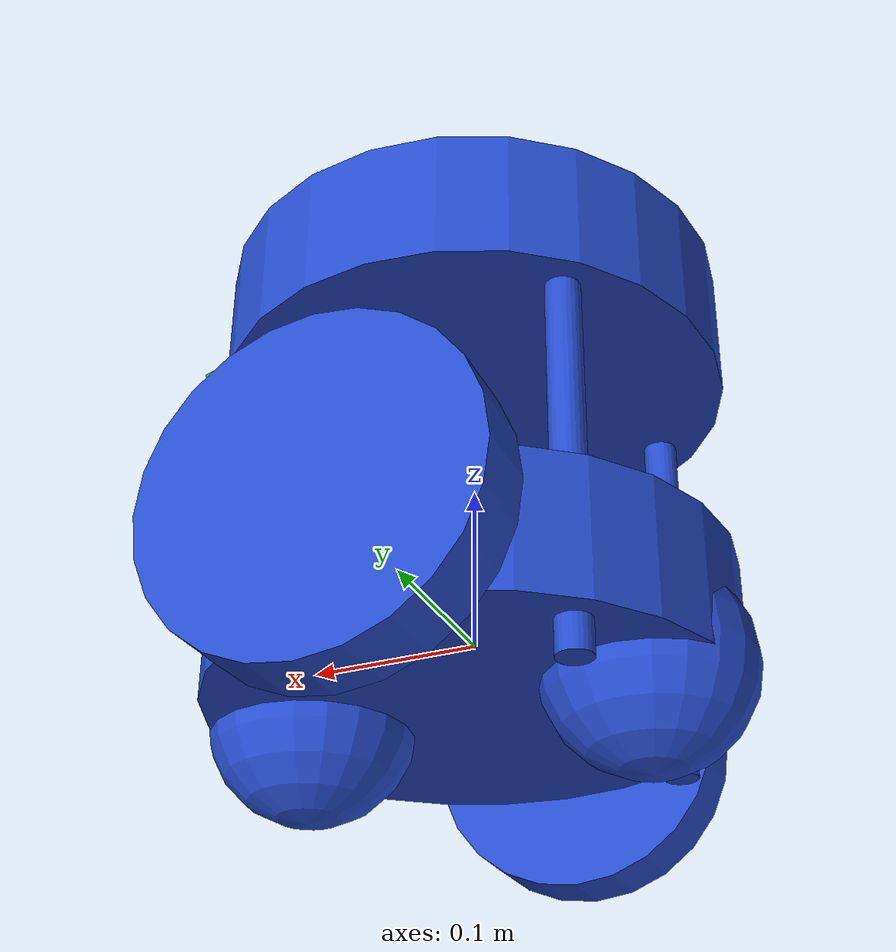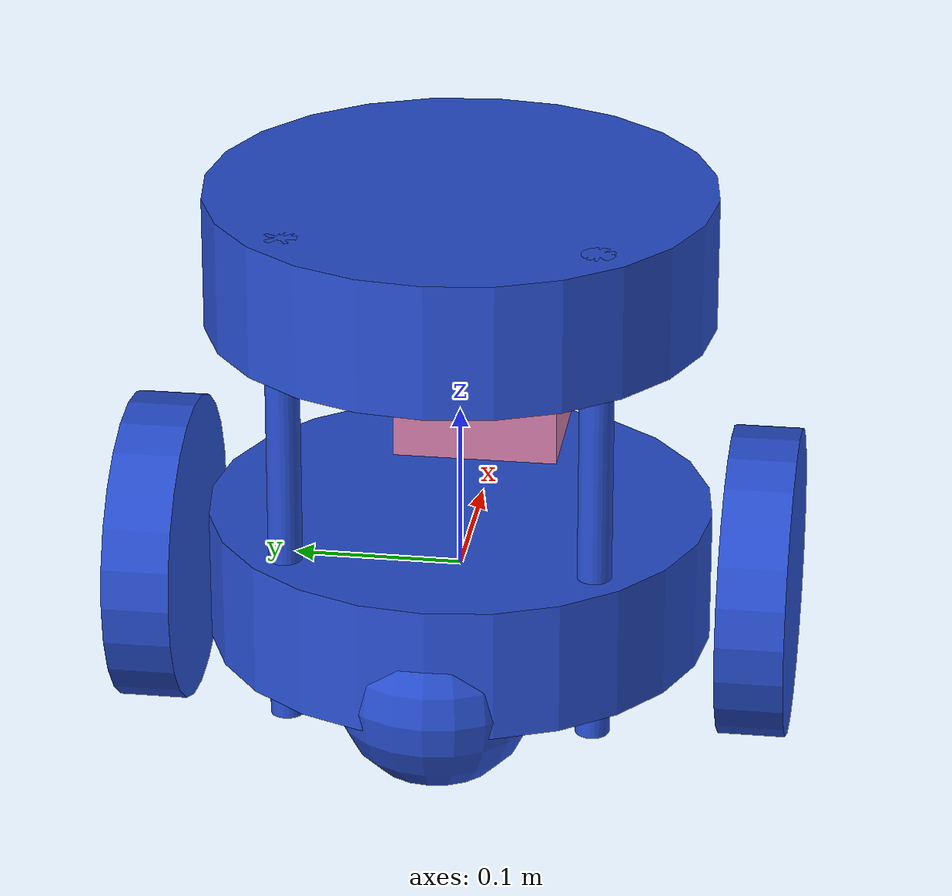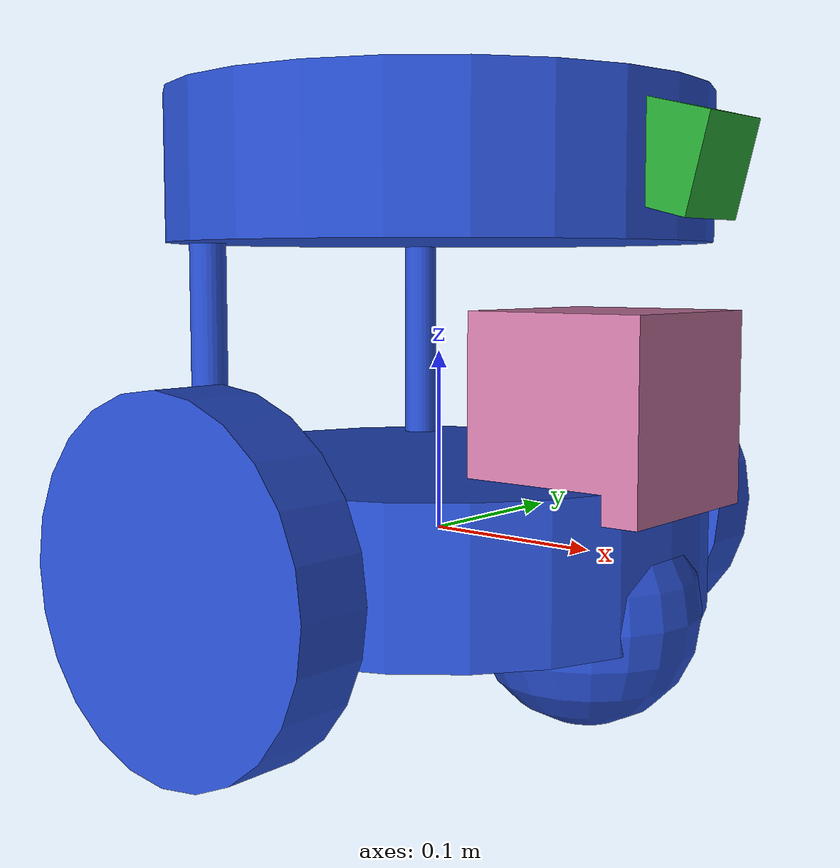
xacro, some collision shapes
<?xml version="1.0"?>
<robot name="my_robot" xmlns:xacro="http://www.ros.org/wiki/xacro">
	<include filename="$(find my_robot)/urdf/my_robot.gazebo" />
	<link name="robot_footprint">
	</link>
	<joint name="robot_footprint_joint" type="fixed">
		<origin xyz="0 0 0" rpy="0 0 0" />
		<parent link="robot_footprint" />
		<child link="chassis" />
	</joint>
	<joint name="camera_joint" type="fixed">
		<origin xyz="0.15 0.0 0.2" rpy="0 0.25 0" />
		<axis xyz="0 1 0" rpy="0 0 0" />
		<parent link="chassis" />
		<child link="camera" />
	</joint>
	<joint name="hokuyo_joint" type="fixed">
		<origin xyz="0.11 0.0 0.075" rpy="0 0 0" />
		<axis xyz="0 1 0" rpy="0 0 0" />
		<parent link="chassis" />
		<child link="hokuyo" />
	</joint>
	<joint type="continuous" name="left_wheel_hinge">
		<origin xyz="0.0 0.18 0" rpy="0 0 0" />
		<child link="left_wheel" />
		<parent link="chassis" />
		<axis xyz="0 1 0" rpy="0 0 0" />
		<limit effort="10000" velocity="1000" />
		<dynamics damping="1.0" friction="1.0" />
	</joint>
	<joint type="continuous" name="right_wheel_hinge">
		<origin xyz="0.0 -0.18 0" rpy="0 0 0" />
		<child link="right_wheel" />
		<parent link="chassis" />
		<axis xyz="0 1 0" rpy="0 0 0" />
		<limit effort="10000" velocity="1000" />
		<dynamics damping="1.0" friction="1.0" />
	</joint>

  <joint name="camera_optical_joint" type="fixed">
    <origin xyz="0 0 0" rpy="-1.5707 0 -1.5707"/>
    <parent link="camera"/>
    <child link="camera_link_optical"/>
  </joint>

  <link name="camera_link_optical">
  </link>

	<link name="chassis">
		<pose>
			0 0 0.1 0 0 0
		</pose>
		<inertial>
			<mass value="15.0" />
			<origin xyz="0.0 0 0" rpy=" 0 0 0" />
			<inertia ixx="0.1" ixy="0" ixz="0" iyy="0.1" iyz="0" izz="0.1" />
		</inertial>
		<collision name="bottom_chassis_collision">
			<origin xyz="0 0 0" rpy=" 0 0 0" />
			<geometry>
				<cylinder radius="0.16" length="0.08" />
			</geometry>
		</collision>
		<visual name="bottom_chassis_visual">
			<origin xyz="0 0 0" rpy=" 0 0 0" />
			<geometry>
				<cylinder radius="0.15" length="0.08" />
			</geometry>
		</visual>
		<collision name="top_chassis_collision">
			<origin xyz="0 0 0.2" rpy=" 0 0 0" />
			<geometry>
				<cylinder radius="0.16" length="0.08" />
			</geometry>
		</collision>
		<visual name="top_chassis_visual">
			<origin xyz="0 0 0.2" rpy=" 0 0 0" />
			<geometry>
				<cylinder radius="0.15" length="0.08" />
			</geometry>
		</visual>
		<collision name="front_caster_collision">
			<origin xyz="0.10 0 -0.03" rpy=" 0 0 0" />
			<geometry>
				<sphere radius="0.06" />
			</geometry>
		</collision>
		<visual name="front_caster_visual">
			<origin xyz="0.10 0 -0.03" rpy=" 0 0 0" />
			<geometry>
				<sphere radius="0.06" />
			</geometry>
		</visual>
		<collision name="back_caster_collision">
			<origin xyz="-0.1 0 -0.03" rpy=" 0 0 0" />
			<geometry>
				<sphere radius="0.06" />
			</geometry>
		</collision>
		<visual name="back_caster_visual">
			<origin xyz="-0.1 0 -0.03" rpy=" 0 0 0" />
			<geometry>
				<sphere radius="0.06" />
			</geometry>
		</visual>
		<collision name="back_right_pin_collision">
			<origin xyz="-0.09 -0.09 0.09" rpy=" 0 0 0" />
			<geometry>
				<cylinder radius="0.01" length="0.3" />
			</geometry>
		</collision>
		<visual name="back_right_pin_visual">
			<origin xyz="-0.09 -0.09 0.09" rpy=" 0 0 0" />
			<geometry>
				<cylinder radius="0.01" length="0.3" />
			</geometry>
		</visual>
		<collision name="back_left_pin_collision">
			<origin xyz="-0.09 0.09 0.09" rpy=" 0 0 0" />
			<geometry>
				<cylinder radius="0.01" length="0.3" />
			</geometry>
		</collision>
		<visual name="back_left_pin_visual">
			<origin xyz="-0.09 0.09 0.09" rpy=" 0 0 0" />
			<geometry>
				<cylinder radius="0.01" length="0.3" />
			</geometry>
		</visual>
	</link>
	<gazebo reference="chassis">
		<material>
			Gazebo/Blue
		</material>
	</gazebo>
	<link name="left_wheel">
		<pose>
			0 0 0.1 0 0 0
		</pose>
		<inertial>
			<mass value="5.0" />
			<origin xyz="0.0 0 0" rpy=" 0 1.5707 1.5707" />
			<inertia ixx="0.1" ixy="0" ixz="0" iyy="0.1" iyz="0" izz="0.1" />
		</inertial>
		<collision name="collision">
			<origin xyz="0 0 0" rpy=" 0 1.5707 1.5707" />
			<geometry>
				<cylinder radius="0.092" length="0.04" />
			</geometry>
		</collision>
		<visual name="left_wheel_visual">
			<origin xyz="0 0 0" rpy=" 0 1.5707 1.5707" />
			<geometry>
				<cylinder radius="0.092" length="0.04" />
			</geometry>
		</visual>
	</link>
	<gazebo reference="left_wheel">
		<material>
			Gazebo/Blue
		</material>
	</gazebo>
	<link name="right_wheel">
		<pose>
			0 0 0.1 0 0 0
		</pose>
		<inertial>
			<mass value="5.0" />
			<origin xyz="0.0 0 0" rpy=" 0 1.5707 1.5707" />
			<inertia ixx="0.1" ixy="0" ixz="0" iyy="0.1" iyz="0" izz="0.1" />
		</inertial>
		<collision name="collision">
			<origin xyz="0 0 0" rpy=" 0 1.5707 1.5707" />
			<geometry>
				<cylinder radius="0.092" length="0.04" />
			</geometry>
		</collision>
		<visual name="right_wheel_visual">
			<origin xyz="0 0 0" rpy=" 0 1.5707 1.5707" />
			<geometry>
				<cylinder radius="0.092" length="0.04" />
			</geometry>
		</visual>
	</link>
	<gazebo reference="right_wheel">
		<material>
			Gazebo/Blue
		</material>
	</gazebo>
	<link name="camera">
		<box_inertia m="0.1" x="0.05" y="0.05" z="0.05" />
		<inertial>
			<mass value="0.1" />
			<origin xyz="0 0 0" rpy=" 0 0 0" />
			<inertia ixx="1e-6" ixy="0" ixz="0" iyy="1e-6" iyz="0" izz="1e-6" />
		</inertial>
		<collision name="collision">
			<origin xyz="0 0 0" rpy=" 0 0 0" />
			<geometry>
				<box size="0.05 0.05 0.05" />
			</geometry>
		</collision>
		<visual name="camera_visual">
			<origin xyz="0 0 0" rpy=" 0 0 0" />
			<geometry>
				<box size="0.05 0.05 0.05" />
			</geometry>
		</visual>
	</link>
	<gazebo reference="camera">
		<material>
			Gazebo/Green
		</material>
	</gazebo>
	<link name="hokuyo">
		<inertial>
			<mass value="1e-5" />
			<origin xyz="0 0 0" rpy=" 0 0 0" />
			<inertia ixx="1e-6" ixy="0" ixz="0" iyy="1e-6" iyz="0" izz="1e-6" />
		</inertial>
		<collision name="collision">
			<origin xyz="0 0 0" rpy=" 0 0 0" />
			<geometry>
				<box size="0.1 0.1 0.1" />
			</geometry>
		</collision>
		<visual name="hokuyo_visual">
			<origin xyz="0 0 0" rpy=" 0 0 0" />
			<geometry>
				<mesh filename="package://my_robot/meshes/hokuyo.dae" />
			</geometry>
		</visual>
	</link>
</robot>
